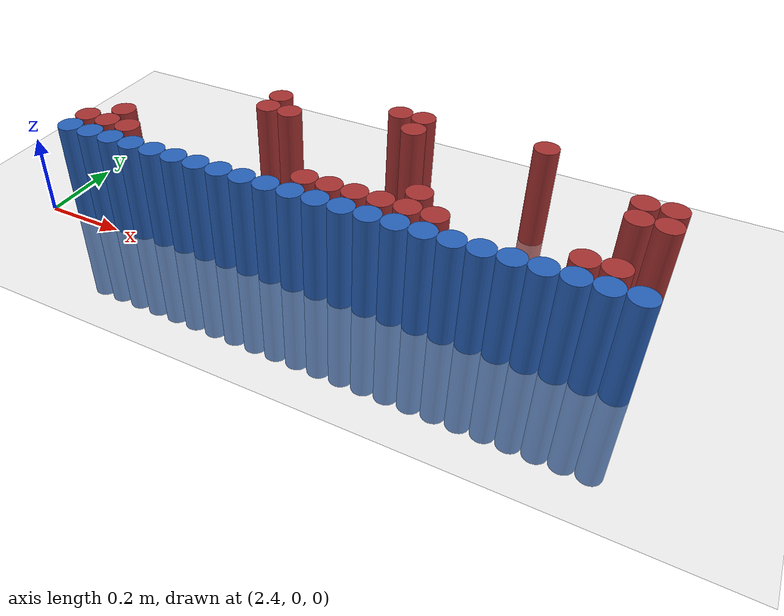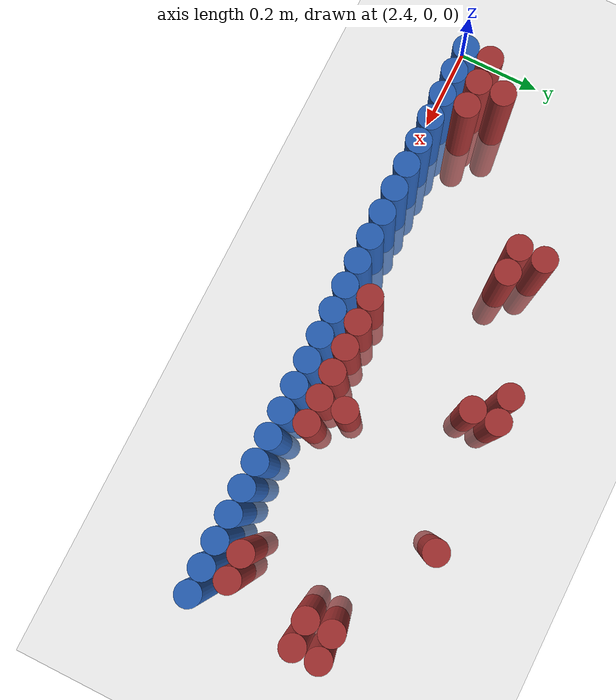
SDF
<sdf version="1.6">
 <world name="default">
  <model name="ground_plane">
   <static>1</static>
   <link name="link">
    <collision name="collision">
     <geometry><plane><normal>0 0 1</normal><size>100 100</size></plane></geometry>
     <surface><friction><ode><mu>100</mu><mu2>50</mu2></ode></friction></surface>
    </collision>
    <visual name="visual">
     <cast_shadows>0</cast_shadows>
     <geometry><plane><normal>0 0 1</normal><size>100 100</size></plane></geometry>
     <material>
      <script><uri>file://media/materials/scripts/gazebo.material</uri><name>Gazebo/Grey</name></script>
     </material>
    </visual>
   </link>
  </model>
  <model name="unit_cylinder_215">
   <static>1</static>
   <pose>3.150000 0.450000 0.000000 0.000000 0.000000 0.000000</pose>
   <link name="link">
    <inertial>
     <mass>1</mass>
     <inertia><ixx>0.145833</ixx><ixy>0</ixy><ixz>0</ixz><iyy>0.145833</iyy><iyz>0</iyz><izz>0.125</izz></inertia>
    </inertial>
    <collision name="collision">
     <geometry><cylinder><radius>0.030000</radius><length>0.5</length></cylinder></geometry>
    </collision>
    <visual name="visual">
     <geometry><cylinder><radius>0.030000</radius><length>0.5</length></cylinder></geometry>
     <material>
      <ambient>0.648000 0.192000 0.192000 1</ambient>
      <diffuse>0.648000 0.192000 0.192000 1</diffuse>
     </material>
     <material>
      <script><name>Gazebo/Grey</name><uri>file://media/materials/scripts/gazebo.material</uri></script>
     </material>
    </visual>
   </link>
  </model>
  <model name="unit_cylinder_216">
   <static>1</static>
   <pose>3.210000 0.450000 0.000000 0.000000 0.000000 0.000000</pose>
   <link name="link">
    <inertial>
     <mass>1</mass>
     <inertia><ixx>0.145833</ixx><ixy>0</ixy><ixz>0</ixz><iyy>0.145833</iyy><iyz>0</iyz><izz>0.125</izz></inertia>
    </inertial>
    <collision name="collision">
     <geometry><cylinder><radius>0.030000</radius><length>0.5</length></cylinder></geometry>
    </collision>
    <visual name="visual">
     <geometry><cylinder><radius>0.030000</radius><length>0.5</length></cylinder></geometry>
     <material>
      <ambient>0.648000 0.192000 0.192000 1</ambient>
      <diffuse>0.648000 0.192000 0.192000 1</diffuse>
     </material>
     <material>
      <script><name>Gazebo/Grey</name><uri>file://media/materials/scripts/gazebo.material</uri></script>
     </material>
    </visual>
   </link>
  </model>
  <model name="unit_cylinder_217">
   <static>1</static>
   <pose>3.510000 0.450000 0.000000 0.000000 0.000000 0.000000</pose>
   <link name="link">
    <inertial>
     <mass>1</mass>
     <inertia><ixx>0.145833</ixx><ixy>0</ixy><ixz>0</ixz><iyy>0.145833</iyy><iyz>0</iyz><izz>0.125</izz></inertia>
    </inertial>
    <collision name="collision">
     <geometry><cylinder><radius>0.030000</radius><length>0.5</length></cylinder></geometry>
    </collision>
    <visual name="visual">
     <geometry><cylinder><radius>0.030000</radius><length>0.5</length></cylinder></geometry>
     <material>
      <ambient>0.648000 0.192000 0.192000 1</ambient>
      <diffuse>0.648000 0.192000 0.192000 1</diffuse>
     </material>
     <material>
      <script><name>Gazebo/Grey</name><uri>file://media/materials/scripts/gazebo.material</uri></script>
     </material>
    </visual>
   </link>
  </model>
  <model name="unit_cylinder_220">
   <static>1</static>
   <pose>2.850000 0.390000 0.000000 0.000000 0.000000 0.000000</pose>
   <link name="link">
    <inertial>
     <mass>1</mass>
     <inertia><ixx>0.145833</ixx><ixy>0</ixy><ixz>0</ixz><iyy>0.145833</iyy><iyz>0</iyz><izz>0.125</izz></inertia>
    </inertial>
    <collision name="collision">
     <geometry><cylinder><radius>0.030000</radius><length>0.5</length></cylinder></geometry>
    </collision>
    <visual name="visual">
     <geometry><cylinder><radius>0.030000</radius><length>0.5</length></cylinder></geometry>
     <material>
      <ambient>0.648000 0.192000 0.192000 1</ambient>
      <diffuse>0.648000 0.192000 0.192000 1</diffuse>
     </material>
     <material>
      <script><name>Gazebo/Grey</name><uri>file://media/materials/scripts/gazebo.material</uri></script>
     </material>
    </visual>
   </link>
  </model>
  <model name="unit_cylinder_221">
   <static>1</static>
   <pose>3.210000 0.390000 0.000000 0.000000 0.000000 0.000000</pose>
   <link name="link">
    <inertial>
     <mass>1</mass>
     <inertia><ixx>0.145833</ixx><ixy>0</ixy><ixz>0</ixz><iyy>0.145833</iyy><iyz>0</iyz><izz>0.125</izz></inertia>
    </inertial>
    <collision name="collision">
     <geometry><cylinder><radius>0.030000</radius><length>0.5</length></cylinder></geometry>
    </collision>
    <visual name="visual">
     <geometry><cylinder><radius>0.030000</radius><length>0.5</length></cylinder></geometry>
     <material>
      <ambient>0.648000 0.192000 0.192000 1</ambient>
      <diffuse>0.648000 0.192000 0.192000 1</diffuse>
     </material>
     <material>
      <script><name>Gazebo/Grey</name><uri>file://media/materials/scripts/gazebo.material</uri></script>
     </material>
    </visual>
   </link>
  </model>
  <model name="unit_cylinder_225">
   <static>1</static>
   <pose>2.850000 0.330000 0.000000 0.000000 0.000000 0.000000</pose>
   <link name="link">
    <inertial>
     <mass>1</mass>
     <inertia><ixx>0.145833</ixx><ixy>0</ixy><ixz>0</ixz><iyy>0.145833</iyy><iyz>0</iyz><izz>0.125</izz></inertia>
    </inertial>
    <collision name="collision">
     <geometry><cylinder><radius>0.030000</radius><length>0.5</length></cylinder></geometry>
    </collision>
    <visual name="visual">
     <geometry><cylinder><radius>0.030000</radius><length>0.5</length></cylinder></geometry>
     <material>
      <ambient>0.648000 0.192000 0.192000 1</ambient>
      <diffuse>0.648000 0.192000 0.192000 1</diffuse>
     </material>
     <material>
      <script><name>Gazebo/Grey</name><uri>file://media/materials/scripts/gazebo.material</uri></script>
     </material>
    </visual>
   </link>
  </model>
  <model name="unit_cylinder_226">
   <static>1</static>
   <pose>2.910000 0.330000 0.000000 0.000000 0.000000 0.000000</pose>
   <link name="link">
    <inertial>
     <mass>1</mass>
     <inertia><ixx>0.145833</ixx><ixy>0</ixy><ixz>0</ixz><iyy>0.145833</iyy><iyz>0</iyz><izz>0.125</izz></inertia>
    </inertial>
    <collision name="collision">
     <geometry><cylinder><radius>0.030000</radius><length>0.5</length></cylinder></geometry>
    </collision>
    <visual name="visual">
     <geometry><cylinder><radius>0.030000</radius><length>0.5</length></cylinder></geometry>
     <material>
      <ambient>0.648000 0.192000 0.192000 1</ambient>
      <diffuse>0.648000 0.192000 0.192000 1</diffuse>
     </material>
     <material>
      <script><name>Gazebo/Grey</name><uri>file://media/materials/scripts/gazebo.material</uri></script>
     </material>
    </visual>
   </link>
  </model>
  <model name="unit_cylinder_227">
   <static>1</static>
   <pose>3.750000 0.330000 0.000000 0.000000 0.000000 0.000000</pose>
   <link name="link">
    <inertial>
     <mass>1</mass>
     <inertia><ixx>0.145833</ixx><ixy>0</ixy><ixz>0</ixz><iyy>0.145833</iyy><iyz>0</iyz><izz>0.125</izz></inertia>
    </inertial>
    <collision name="collision">
     <geometry><cylinder><radius>0.030000</radius><length>0.5</length></cylinder></geometry>
    </collision>
    <visual name="visual">
     <geometry><cylinder><radius>0.030000</radius><length>0.5</length></cylinder></geometry>
     <material>
      <ambient>0.648000 0.192000 0.192000 1</ambient>
      <diffuse>0.648000 0.192000 0.192000 1</diffuse>
     </material>
     <material>
      <script><name>Gazebo/Grey</name><uri>file://media/materials/scripts/gazebo.material</uri></script>
     </material>
    </visual>
   </link>
  </model>
  <model name="unit_cylinder_228">
   <static>1</static>
   <pose>3.810000 0.330000 0.000000 0.000000 0.000000 0.000000</pose>
   <link name="link">
    <inertial>
     <mass>1</mass>
     <inertia><ixx>0.145833</ixx><ixy>0</ixy><ixz>0</ixz><iyy>0.145833</iyy><iyz>0</iyz><izz>0.125</izz></inertia>
    </inertial>
    <collision name="collision">
     <geometry><cylinder><radius>0.030000</radius><length>0.5</length></cylinder></geometry>
    </collision>
    <visual name="visual">
     <geometry><cylinder><radius>0.030000</radius><length>0.5</length></cylinder></geometry>
     <material>
      <ambient>0.648000 0.192000 0.192000 1</ambient>
      <diffuse>0.648000 0.192000 0.192000 1</diffuse>
     </material>
     <material>
      <script><name>Gazebo/Grey</name><uri>file://media/materials/scripts/gazebo.material</uri></script>
     </material>
    </visual>
   </link>
  </model>
  <model name="unit_cylinder_230">
   <static>1</static>
   <pose>3.750000 0.270000 0.000000 0.000000 0.000000 0.000000</pose>
   <link name="link">
    <inertial>
     <mass>1</mass>
     <inertia><ixx>0.145833</ixx><ixy>0</ixy><ixz>0</ixz><iyy>0.145833</iyy><iyz>0</iyz><izz>0.125</izz></inertia>
    </inertial>
    <collision name="collision">
     <geometry><cylinder><radius>0.030000</radius><length>0.5</length></cylinder></geometry>
    </collision>
    <visual name="visual">
     <geometry><cylinder><radius>0.030000</radius><length>0.5</length></cylinder></geometry>
     <material>
      <ambient>0.648000 0.192000 0.192000 1</ambient>
      <diffuse>0.648000 0.192000 0.192000 1</diffuse>
     </material>
     <material>
      <script><name>Gazebo/Grey</name><uri>file://media/materials/scripts/gazebo.material</uri></script>
     </material>
    </visual>
   </link>
  </model>
  <model name="unit_cylinder_231">
   <static>1</static>
   <pose>3.810000 0.270000 0.000000 0.000000 0.000000 0.000000</pose>
   <link name="link">
    <inertial>
     <mass>1</mass>
     <inertia><ixx>0.145833</ixx><ixy>0</ixy><ixz>0</ixz><iyy>0.145833</iyy><iyz>0</iyz><izz>0.125</izz></inertia>
    </inertial>
    <collision name="collision">
     <geometry><cylinder><radius>0.030000</radius><length>0.5</length></cylinder></geometry>
    </collision>
    <visual name="visual">
     <geometry><cylinder><radius>0.030000</radius><length>0.5</length></cylinder></geometry>
     <material>
      <ambient>0.648000 0.192000 0.192000 1</ambient>
      <diffuse>0.648000 0.192000 0.192000 1</diffuse>
     </material>
     <material>
      <script><name>Gazebo/Grey</name><uri>file://media/materials/scripts/gazebo.material</uri></script>
     </material>
    </visual>
   </link>
  </model>
  <model name="unit_cylinder_235">
   <static>1</static>
   <pose>2.550000 0.150000 0.000000 0.000000 0.000000 0.000000</pose>
   <link name="link">
    <inertial>
     <mass>1</mass>
     <inertia><ixx>0.145833</ixx><ixy>0</ixy><ixz>0</ixz><iyy>0.145833</iyy><iyz>0</iyz><izz>0.125</izz></inertia>
    </inertial>
    <collision name="collision">
     <geometry><cylinder><radius>0.030000</radius><length>0.5</length></cylinder></geometry>
    </collision>
    <visual name="visual">
     <geometry><cylinder><radius>0.030000</radius><length>0.5</length></cylinder></geometry>
     <material>
      <ambient>0.648000 0.192000 0.192000 1</ambient>
      <diffuse>0.648000 0.192000 0.192000 1</diffuse>
     </material>
     <material>
      <script><name>Gazebo/Grey</name><uri>file://media/materials/scripts/gazebo.material</uri></script>
     </material>
    </visual>
   </link>
  </model>
  <model name="unit_cylinder_236">
   <static>1</static>
   <pose>3.330000 0.150000 0.000000 0.000000 0.000000 0.000000</pose>
   <link name="link">
    <inertial>
     <mass>1</mass>
     <inertia><ixx>0.145833</ixx><ixy>0</ixy><ixz>0</ixz><iyy>0.145833</iyy><iyz>0</iyz><izz>0.125</izz></inertia>
    </inertial>
    <collision name="collision">
     <geometry><cylinder><radius>0.030000</radius><length>0.5</length></cylinder></geometry>
    </collision>
    <visual name="visual">
     <geometry><cylinder><radius>0.030000</radius><length>0.5</length></cylinder></geometry>
     <material>
      <ambient>0.648000 0.192000 0.192000 1</ambient>
      <diffuse>0.648000 0.192000 0.192000 1</diffuse>
     </material>
     <material>
      <script><name>Gazebo/Grey</name><uri>file://media/materials/scripts/gazebo.material</uri></script>
     </material>
    </visual>
   </link>
  </model>
  <model name="unit_cylinder_241">
   <static>1</static>
   <pose>2.490000 0.090000 0.000000 0.000000 0.000000 0.000000</pose>
   <link name="link">
    <inertial>
     <mass>1</mass>
     <inertia><ixx>0.145833</ixx><ixy>0</ixy><ixz>0</ixz><iyy>0.145833</iyy><iyz>0</iyz><izz>0.125</izz></inertia>
    </inertial>
    <collision name="collision">
     <geometry><cylinder><radius>0.030000</radius><length>0.5</length></cylinder></geometry>
    </collision>
    <visual name="visual">
     <geometry><cylinder><radius>0.030000</radius><length>0.5</length></cylinder></geometry>
     <material>
      <ambient>0.648000 0.192000 0.192000 1</ambient>
      <diffuse>0.648000 0.192000 0.192000 1</diffuse>
     </material>
     <material>
      <script><name>Gazebo/Grey</name><uri>file://media/materials/scripts/gazebo.material</uri></script>
     </material>
    </visual>
   </link>
  </model>
  <model name="unit_cylinder_242">
   <static>1</static>
   <pose>2.550000 0.090000 0.000000 0.000000 0.000000 0.000000</pose>
   <link name="link">
    <inertial>
     <mass>1</mass>
     <inertia><ixx>0.145833</ixx><ixy>0</ixy><ixz>0</ixz><iyy>0.145833</iyy><iyz>0</iyz><izz>0.125</izz></inertia>
    </inertial>
    <collision name="collision">
     <geometry><cylinder><radius>0.030000</radius><length>0.5</length></cylinder></geometry>
    </collision>
    <visual name="visual">
     <geometry><cylinder><radius>0.030000</radius><length>0.5</length></cylinder></geometry>
     <material>
      <ambient>0.648000 0.192000 0.192000 1</ambient>
      <diffuse>0.648000 0.192000 0.192000 1</diffuse>
     </material>
     <material>
      <script><name>Gazebo/Grey</name><uri>file://media/materials/scripts/gazebo.material</uri></script>
     </material>
    </visual>
   </link>
  </model>
  <model name="unit_cylinder_243">
   <static>1</static>
   <pose>2.610000 0.090000 0.000000 0.000000 0.000000 0.000000</pose>
   <link name="link">
    <inertial>
     <mass>1</mass>
     <inertia><ixx>0.145833</ixx><ixy>0</ixy><ixz>0</ixz><iyy>0.145833</iyy><iyz>0</iyz><izz>0.125</izz></inertia>
    </inertial>
    <collision name="collision">
     <geometry><cylinder><radius>0.030000</radius><length>0.5</length></cylinder></geometry>
    </collision>
    <visual name="visual">
     <geometry><cylinder><radius>0.030000</radius><length>0.5</length></cylinder></geometry>
     <material>
      <ambient>0.648000 0.192000 0.192000 1</ambient>
      <diffuse>0.648000 0.192000 0.192000 1</diffuse>
     </material>
     <material>
      <script><name>Gazebo/Grey</name><uri>file://media/materials/scripts/gazebo.material</uri></script>
     </material>
    </visual>
   </link>
  </model>
  <model name="unit_cylinder_244">
   <static>1</static>
   <pose>3.090000 0.090000 0.000000 0.000000 0.000000 0.000000</pose>
   <link name="link">
    <inertial>
     <mass>1</mass>
     <inertia><ixx>0.145833</ixx><ixy>0</ixy><ixz>0</ixz><iyy>0.145833</iyy><iyz>0</iyz><izz>0.125</izz></inertia>
    </inertial>
    <collision name="collision">
     <geometry><cylinder><radius>0.030000</radius><length>0.5</length></cylinder></geometry>
    </collision>
    <visual name="visual">
     <geometry><cylinder><radius>0.030000</radius><length>0.5</length></cylinder></geometry>
     <material>
      <ambient>0.648000 0.192000 0.192000 1</ambient>
      <diffuse>0.648000 0.192000 0.192000 1</diffuse>
     </material>
     <material>
      <script><name>Gazebo/Grey</name><uri>file://media/materials/scripts/gazebo.material</uri></script>
     </material>
    </visual>
   </link>
  </model>
  <model name="unit_cylinder_245">
   <static>1</static>
   <pose>3.150000 0.090000 0.000000 0.000000 0.000000 0.000000</pose>
   <link name="link">
    <inertial>
     <mass>1</mass>
     <inertia><ixx>0.145833</ixx><ixy>0</ixy><ixz>0</ixz><iyy>0.145833</iyy><iyz>0</iyz><izz>0.125</izz></inertia>
    </inertial>
    <collision name="collision">
     <geometry><cylinder><radius>0.030000</radius><length>0.5</length></cylinder></geometry>
    </collision>
    <visual name="visual">
     <geometry><cylinder><radius>0.030000</radius><length>0.5</length></cylinder></geometry>
     <material>
      <ambient>0.648000 0.192000 0.192000 1</ambient>
      <diffuse>0.648000 0.192000 0.192000 1</diffuse>
     </material>
     <material>
      <script><name>Gazebo/Grey</name><uri>file://media/materials/scripts/gazebo.material</uri></script>
     </material>
    </visual>
   </link>
  </model>
  <model name="unit_cylinder_246">
   <static>1</static>
   <pose>3.210000 0.090000 0.000000 0.000000 0.000000 0.000000</pose>
   <link name="link">
    <inertial>
     <mass>1</mass>
     <inertia><ixx>0.145833</ixx><ixy>0</ixy><ixz>0</ixz><iyy>0.145833</iyy><iyz>0</iyz><izz>0.125</izz></inertia>
    </inertial>
    <collision name="collision">
     <geometry><cylinder><radius>0.030000</radius><length>0.5</length></cylinder></geometry>
    </collision>
    <visual name="visual">
     <geometry><cylinder><radius>0.030000</radius><length>0.5</length></cylinder></geometry>
     <material>
      <ambient>0.648000 0.192000 0.192000 1</ambient>
      <diffuse>0.648000 0.192000 0.192000 1</diffuse>
     </material>
     <material>
      <script><name>Gazebo/Grey</name><uri>file://media/materials/scripts/gazebo.material</uri></script>
     </material>
    </visual>
   </link>
  </model>
  <model name="unit_cylinder_247">
   <static>1</static>
   <pose>3.270000 0.090000 0.000000 0.000000 0.000000 0.000000</pose>
   <link name="link">
    <inertial>
     <mass>1</mass>
     <inertia><ixx>0.145833</ixx><ixy>0</ixy><ixz>0</ixz><iyy>0.145833</iyy><iyz>0</iyz><izz>0.125</izz></inertia>
    </inertial>
    <collision name="collision">
     <geometry><cylinder><radius>0.030000</radius><length>0.5</length></cylinder></geometry>
    </collision>
    <visual name="visual">
     <geometry><cylinder><radius>0.030000</radius><length>0.5</length></cylinder></geometry>
     <material>
      <ambient>0.648000 0.192000 0.192000 1</ambient>
      <diffuse>0.648000 0.192000 0.192000 1</diffuse>
     </material>
     <material>
      <script><name>Gazebo/Grey</name><uri>file://media/materials/scripts/gazebo.material</uri></script>
     </material>
    </visual>
   </link>
  </model>
  <model name="unit_cylinder_248">
   <static>1</static>
   <pose>3.330000 0.090000 0.000000 0.000000 0.000000 0.000000</pose>
   <link name="link">
    <inertial>
     <mass>1</mass>
     <inertia><ixx>0.145833</ixx><ixy>0</ixy><ixz>0</ixz><iyy>0.145833</iyy><iyz>0</iyz><izz>0.125</izz></inertia>
    </inertial>
    <collision name="collision">
     <geometry><cylinder><radius>0.030000</radius><length>0.5</length></cylinder></geometry>
    </collision>
    <visual name="visual">
     <geometry><cylinder><radius>0.030000</radius><length>0.5</length></cylinder></geometry>
     <material>
      <ambient>0.648000 0.192000 0.192000 1</ambient>
      <diffuse>0.648000 0.192000 0.192000 1</diffuse>
     </material>
     <material>
      <script><name>Gazebo/Grey</name><uri>file://media/materials/scripts/gazebo.material</uri></script>
     </material>
    </visual>
   </link>
  </model>
  <model name="unit_cylinder_249">
   <static>1</static>
   <pose>3.390000 0.090000 0.000000 0.000000 0.000000 0.000000</pose>
   <link name="link">
    <inertial>
     <mass>1</mass>
     <inertia><ixx>0.145833</ixx><ixy>0</ixy><ixz>0</ixz><iyy>0.145833</iyy><iyz>0</iyz><izz>0.125</izz></inertia>
    </inertial>
    <collision name="collision">
     <geometry><cylinder><radius>0.030000</radius><length>0.5</length></cylinder></geometry>
    </collision>
    <visual name="visual">
     <geometry><cylinder><radius>0.030000</radius><length>0.5</length></cylinder></geometry>
     <material>
      <ambient>0.648000 0.192000 0.192000 1</ambient>
      <diffuse>0.648000 0.192000 0.192000 1</diffuse>
     </material>
     <material>
      <script><name>Gazebo/Grey</name><uri>file://media/materials/scripts/gazebo.material</uri></script>
     </material>
    </visual>
   </link>
  </model>
  <model name="unit_cylinder_250">
   <static>1</static>
   <pose>3.690000 0.090000 0.000000 0.000000 0.000000 0.000000</pose>
   <link name="link">
    <inertial>
     <mass>1</mass>
     <inertia><ixx>0.145833</ixx><ixy>0</ixy><ixz>0</ixz><iyy>0.145833</iyy><iyz>0</iyz><izz>0.125</izz></inertia>
    </inertial>
    <collision name="collision">
     <geometry><cylinder><radius>0.030000</radius><length>0.5</length></cylinder></geometry>
    </collision>
    <visual name="visual">
     <geometry><cylinder><radius>0.030000</radius><length>0.5</length></cylinder></geometry>
     <material>
      <ambient>0.648000 0.192000 0.192000 1</ambient>
      <diffuse>0.648000 0.192000 0.192000 1</diffuse>
     </material>
     <material>
      <script><name>Gazebo/Grey</name><uri>file://media/materials/scripts/gazebo.material</uri></script>
     </material>
    </visual>
   </link>
  </model>
  <model name="unit_cylinder_251">
   <static>1</static>
   <pose>3.750000 0.090000 0.000000 0.000000 0.000000 0.000000</pose>
   <link name="link">
    <inertial>
     <mass>1</mass>
     <inertia><ixx>0.145833</ixx><ixy>0</ixy><ixz>0</ixz><iyy>0.145833</iyy><iyz>0</iyz><izz>0.125</izz></inertia>
    </inertial>
    <collision name="collision">
     <geometry><cylinder><radius>0.030000</radius><length>0.5</length></cylinder></geometry>
    </collision>
    <visual name="visual">
     <geometry><cylinder><radius>0.030000</radius><length>0.5</length></cylinder></geometry>
     <material>
      <ambient>0.648000 0.192000 0.192000 1</ambient>
      <diffuse>0.648000 0.192000 0.192000 1</diffuse>
     </material>
     <material>
      <script><name>Gazebo/Grey</name><uri>file://media/materials/scripts/gazebo.material</uri></script>
     </material>
    </visual>
   </link>
  </model>
  <model name="unit_cylinder_259">
   <static>1</static>
   <pose>2.490000 0.030000 0.000000 0.000000 0.000000 0.000000</pose>
   <link name="link">
    <inertial>
     <mass>1</mass>
     <inertia><ixx>0.145833</ixx><ixy>0</ixy><ixz>0</ixz><iyy>0.145833</iyy><iyz>0</iyz><izz>0.125</izz></inertia>
    </inertial>
    <collision name="collision">
     <geometry><cylinder><radius>0.030000</radius><length>0.5</length></cylinder></geometry>
    </collision>
    <visual name="visual">
     <geometry><cylinder><radius>0.030000</radius><length>0.5</length></cylinder></geometry>
     <material>
      <ambient>0.152000 0.379000 0.720000 1</ambient>
      <diffuse>0.152000 0.379000 0.720000 1</diffuse>
     </material>
     <material>
      <script><name>Gazebo/Grey</name><uri>file://media/materials/scripts/gazebo.material</uri></script>
     </material>
    </visual>
   </link>
  </model>
  <model name="unit_cylinder_260">
   <static>1</static>
   <pose>2.550000 0.030000 0.000000 0.000000 0.000000 0.000000</pose>
   <link name="link">
    <inertial>
     <mass>1</mass>
     <inertia><ixx>0.145833</ixx><ixy>0</ixy><ixz>0</ixz><iyy>0.145833</iyy><iyz>0</iyz><izz>0.125</izz></inertia>
    </inertial>
    <collision name="collision">
     <geometry><cylinder><radius>0.030000</radius><length>0.5</length></cylinder></geometry>
    </collision>
    <visual name="visual">
     <geometry><cylinder><radius>0.030000</radius><length>0.5</length></cylinder></geometry>
     <material>
      <ambient>0.152000 0.379000 0.720000 1</ambient>
      <diffuse>0.152000 0.379000 0.720000 1</diffuse>
     </material>
     <material>
      <script><name>Gazebo/Grey</name><uri>file://media/materials/scripts/gazebo.material</uri></script>
     </material>
    </visual>
   </link>
  </model>
  <model name="unit_cylinder_261">
   <static>1</static>
   <pose>2.610000 0.030000 0.000000 0.000000 0.000000 0.000000</pose>
   <link name="link">
    <inertial>
     <mass>1</mass>
     <inertia><ixx>0.145833</ixx><ixy>0</ixy><ixz>0</ixz><iyy>0.145833</iyy><iyz>0</iyz><izz>0.125</izz></inertia>
    </inertial>
    <collision name="collision">
     <geometry><cylinder><radius>0.030000</radius><length>0.5</length></cylinder></geometry>
    </collision>
    <visual name="visual">
     <geometry><cylinder><radius>0.030000</radius><length>0.5</length></cylinder></geometry>
     <material>
      <ambient>0.152000 0.379000 0.720000 1</ambient>
      <diffuse>0.152000 0.379000 0.720000 1</diffuse>
     </material>
     <material>
      <script><name>Gazebo/Grey</name><uri>file://media/materials/scripts/gazebo.material</uri></script>
     </material>
    </visual>
   </link>
  </model>
  <model name="unit_cylinder_262">
   <static>1</static>
   <pose>2.670000 0.030000 0.000000 0.000000 0.000000 0.000000</pose>
   <link name="link">
    <inertial>
     <mass>1</mass>
     <inertia><ixx>0.145833</ixx><ixy>0</ixy><ixz>0</ixz><iyy>0.145833</iyy><iyz>0</iyz><izz>0.125</izz></inertia>
    </inertial>
    <collision name="collision">
     <geometry><cylinder><radius>0.030000</radius><length>0.5</length></cylinder></geometry>
    </collision>
    <visual name="visual">
     <geometry><cylinder><radius>0.030000</radius><length>0.5</length></cylinder></geometry>
     <material>
      <ambient>0.152000 0.379000 0.720000 1</ambient>
      <diffuse>0.152000 0.379000 0.720000 1</diffuse>
     </material>
     <material>
      <script><name>Gazebo/Grey</name><uri>file://media/materials/scripts/gazebo.material</uri></script>
     </material>
    </visual>
   </link>
  </model>
  <model name="unit_cylinder_263">
   <static>1</static>
   <pose>2.730000 0.030000 0.000000 0.000000 0.000000 0.000000</pose>
   <link name="link">
    <inertial>
     <mass>1</mass>
     <inertia><ixx>0.145833</ixx><ixy>0</ixy><ixz>0</ixz><iyy>0.145833</iyy><iyz>0</iyz><izz>0.125</izz></inertia>
    </inertial>
    <collision name="collision">
     <geometry><cylinder><radius>0.030000</radius><length>0.5</length></cylinder></geometry>
    </collision>
    <visual name="visual">
     <geometry><cylinder><radius>0.030000</radius><length>0.5</length></cylinder></geometry>
     <material>
      <ambient>0.152000 0.379000 0.720000 1</ambient>
      <diffuse>0.152000 0.379000 0.720000 1</diffuse>
     </material>
     <material>
      <script><name>Gazebo/Grey</name><uri>file://media/materials/scripts/gazebo.material</uri></script>
     </material>
    </visual>
   </link>
  </model>
  <model name="unit_cylinder_264">
   <static>1</static>
   <pose>2.790000 0.030000 0.000000 0.000000 0.000000 0.000000</pose>
   <link name="link">
    <inertial>
     <mass>1</mass>
     <inertia><ixx>0.145833</ixx><ixy>0</ixy><ixz>0</ixz><iyy>0.145833</iyy><iyz>0</iyz><izz>0.125</izz></inertia>
    </inertial>
    <collision name="collision">
     <geometry><cylinder><radius>0.030000</radius><length>0.5</length></cylinder></geometry>
    </collision>
    <visual name="visual">
     <geometry><cylinder><radius>0.030000</radius><length>0.5</length></cylinder></geometry>
     <material>
      <ambient>0.152000 0.379000 0.720000 1</ambient>
      <diffuse>0.152000 0.379000 0.720000 1</diffuse>
     </material>
     <material>
      <script><name>Gazebo/Grey</name><uri>file://media/materials/scripts/gazebo.material</uri></script>
     </material>
    </visual>
   </link>
  </model>
  <model name="unit_cylinder_265">
   <static>1</static>
   <pose>2.850000 0.030000 0.000000 0.000000 0.000000 0.000000</pose>
   <link name="link">
    <inertial>
     <mass>1</mass>
     <inertia><ixx>0.145833</ixx><ixy>0</ixy><ixz>0</ixz><iyy>0.145833</iyy><iyz>0</iyz><izz>0.125</izz></inertia>
    </inertial>
    <collision name="collision">
     <geometry><cylinder><radius>0.030000</radius><length>0.5</length></cylinder></geometry>
    </collision>
    <visual name="visual">
     <geometry><cylinder><radius>0.030000</radius><length>0.5</length></cylinder></geometry>
     <material>
      <ambient>0.152000 0.379000 0.720000 1</ambient>
      <diffuse>0.152000 0.379000 0.720000 1</diffuse>
     </material>
     <material>
      <script><name>Gazebo/Grey</name><uri>file://media/materials/scripts/gazebo.material</uri></script>
     </material>
    </visual>
   </link>
  </model>
  <model name="unit_cylinder_266">
   <static>1</static>
   <pose>2.910000 0.030000 0.000000 0.000000 0.000000 0.000000</pose>
   <link name="link">
    <inertial>
     <mass>1</mass>
     <inertia><ixx>0.145833</ixx><ixy>0</ixy><ixz>0</ixz><iyy>0.145833</iyy><iyz>0</iyz><izz>0.125</izz></inertia>
    </inertial>
    <collision name="collision">
     <geometry><cylinder><radius>0.030000</radius><length>0.5</length></cylinder></geometry>
    </collision>
    <visual name="visual">
     <geometry><cylinder><radius>0.030000</radius><length>0.5</length></cylinder></geometry>
     <material>
      <ambient>0.152000 0.379000 0.720000 1</ambient>
      <diffuse>0.152000 0.379000 0.720000 1</diffuse>
     </material>
     <material>
      <script><name>Gazebo/Grey</name><uri>file://media/materials/scripts/gazebo.material</uri></script>
     </material>
    </visual>
   </link>
  </model>
  <model name="unit_cylinder_267">
   <static>1</static>
   <pose>2.970000 0.030000 0.000000 0.000000 0.000000 0.000000</pose>
   <link name="link">
    <inertial>
     <mass>1</mass>
     <inertia><ixx>0.145833</ixx><ixy>0</ixy><ixz>0</ixz><iyy>0.145833</iyy><iyz>0</iyz><izz>0.125</izz></inertia>
    </inertial>
    <collision name="collision">
     <geometry><cylinder><radius>0.030000</radius><length>0.5</length></cylinder></geometry>
    </collision>
    <visual name="visual">
     <geometry><cylinder><radius>0.030000</radius><length>0.5</length></cylinder></geometry>
     <material>
      <ambient>0.152000 0.379000 0.720000 1</ambient>
      <diffuse>0.152000 0.379000 0.720000 1</diffuse>
     </material>
     <material>
      <script><name>Gazebo/Grey</name><uri>file://media/materials/scripts/gazebo.material</uri></script>
     </material>
    </visual>
   </link>
  </model>
  <model name="unit_cylinder_268">
   <static>1</static>
   <pose>3.030000 0.030000 0.000000 0.000000 0.000000 0.000000</pose>
   <link name="link">
    <inertial>
     <mass>1</mass>
     <inertia><ixx>0.145833</ixx><ixy>0</ixy><ixz>0</ixz><iyy>0.145833</iyy><iyz>0</iyz><izz>0.125</izz></inertia>
    </inertial>
    <collision name="collision">
     <geometry><cylinder><radius>0.030000</radius><length>0.5</length></cylinder></geometry>
    </collision>
    <visual name="visual">
     <geometry><cylinder><radius>0.030000</radius><length>0.5</length></cylinder></geometry>
     <material>
      <ambient>0.152000 0.379000 0.720000 1</ambient>
      <diffuse>0.152000 0.379000 0.720000 1</diffuse>
     </material>
     <material>
      <script><name>Gazebo/Grey</name><uri>file://media/materials/scripts/gazebo.material</uri></script>
     </material>
    </visual>
   </link>
  </model>
  <model name="unit_cylinder_269">
   <static>1</static>
   <pose>3.090000 0.030000 0.000000 0.000000 0.000000 0.000000</pose>
   <link name="link">
    <inertial>
     <mass>1</mass>
     <inertia><ixx>0.145833</ixx><ixy>0</ixy><ixz>0</ixz><iyy>0.145833</iyy><iyz>0</iyz><izz>0.125</izz></inertia>
    </inertial>
    <collision name="collision">
     <geometry><cylinder><radius>0.030000</radius><length>0.5</length></cylinder></geometry>
    </collision>
    <visual name="visual">
     <geometry><cylinder><radius>0.030000</radius><length>0.5</length></cylinder></geometry>
     <material>
      <ambient>0.152000 0.379000 0.720000 1</ambient>
      <diffuse>0.152000 0.379000 0.720000 1</diffuse>
     </material>
     <material>
      <script><name>Gazebo/Grey</name><uri>file://media/materials/scripts/gazebo.material</uri></script>
     </material>
    </visual>
   </link>
  </model>
  <model name="unit_cylinder_270">
   <static>1</static>
   <pose>3.150000 0.030000 0.000000 0.000000 0.000000 0.000000</pose>
   <link name="link">
    <inertial>
     <mass>1</mass>
     <inertia><ixx>0.145833</ixx><ixy>0</ixy><ixz>0</ixz><iyy>0.145833</iyy><iyz>0</iyz><izz>0.125</izz></inertia>
    </inertial>
    <collision name="collision">
     <geometry><cylinder><radius>0.030000</radius><length>0.5</length></cylinder></geometry>
    </collision>
    <visual name="visual">
     <geometry><cylinder><radius>0.030000</radius><length>0.5</length></cylinder></geometry>
     <material>
      <ambient>0.152000 0.379000 0.720000 1</ambient>
      <diffuse>0.152000 0.379000 0.720000 1</diffuse>
     </material>
     <material>
      <script><name>Gazebo/Grey</name><uri>file://media/materials/scripts/gazebo.material</uri></script>
     </material>
    </visual>
   </link>
  </model>
  <model name="unit_cylinder_271">
   <static>1</static>
   <pose>3.210000 0.030000 0.000000 0.000000 0.000000 0.000000</pose>
   <link name="link">
    <inertial>
     <mass>1</mass>
     <inertia><ixx>0.145833</ixx><ixy>0</ixy><ixz>0</ixz><iyy>0.145833</iyy><iyz>0</iyz><izz>0.125</izz></inertia>
    </inertial>
    <collision name="collision">
     <geometry><cylinder><radius>0.030000</radius><length>0.5</length></cylinder></geometry>
    </collision>
    <visual name="visual">
     <geometry><cylinder><radius>0.030000</radius><length>0.5</length></cylinder></geometry>
     <material>
      <ambient>0.152000 0.379000 0.720000 1</ambient>
      <diffuse>0.152000 0.379000 0.720000 1</diffuse>
     </material>
     <material>
      <script><name>Gazebo/Grey</name><uri>file://media/materials/scripts/gazebo.material</uri></script>
     </material>
    </visual>
   </link>
  </model>
  <model name="unit_cylinder_272">
   <static>1</static>
   <pose>3.270000 0.030000 0.000000 0.000000 0.000000 0.000000</pose>
   <link name="link">
    <inertial>
     <mass>1</mass>
     <inertia><ixx>0.145833</ixx><ixy>0</ixy><ixz>0</ixz><iyy>0.145833</iyy><iyz>0</iyz><izz>0.125</izz></inertia>
    </inertial>
    <collision name="collision">
     <geometry><cylinder><radius>0.030000</radius><length>0.5</length></cylinder></geometry>
    </collision>
    <visual name="visual">
     <geometry><cylinder><radius>0.030000</radius><length>0.5</length></cylinder></geometry>
     <material>
      <ambient>0.152000 0.379000 0.720000 1</ambient>
      <diffuse>0.152000 0.379000 0.720000 1</diffuse>
     </material>
     <material>
      <script><name>Gazebo/Grey</name><uri>file://media/materials/scripts/gazebo.material</uri></script>
     </material>
    </visual>
   </link>
  </model>
  <model name="unit_cylinder_273">
   <static>1</static>
   <pose>3.330000 0.030000 0.000000 0.000000 0.000000 0.000000</pose>
   <link name="link">
    <inertial>
     <mass>1</mass>
     <inertia><ixx>0.145833</ixx><ixy>0</ixy><ixz>0</ixz><iyy>0.145833</iyy><iyz>0</iyz><izz>0.125</izz></inertia>
    </inertial>
    <collision name="collision">
     <geometry><cylinder><radius>0.030000</radius><length>0.5</length></cylinder></geometry>
    </collision>
    <visual name="visual">
     <geometry><cylinder><radius>0.030000</radius><length>0.5</length></cylinder></geometry>
     <material>
      <ambient>0.152000 0.379000 0.720000 1</ambient>
      <diffuse>0.152000 0.379000 0.720000 1</diffuse>
     </material>
     <material>
      <script><name>Gazebo/Grey</name><uri>file://media/materials/scripts/gazebo.material</uri></script>
     </material>
    </visual>
   </link>
  </model>
  <model name="unit_cylinder_274">
   <static>1</static>
   <pose>3.390000 0.030000 0.000000 0.000000 0.000000 0.000000</pose>
   <link name="link">
    <inertial>
     <mass>1</mass>
     <inertia><ixx>0.145833</ixx><ixy>0</ixy><ixz>0</ixz><iyy>0.145833</iyy><iyz>0</iyz><izz>0.125</izz></inertia>
    </inertial>
    <collision name="collision">
     <geometry><cylinder><radius>0.030000</radius><length>0.5</length></cylinder></geometry>
    </collision>
    <visual name="visual">
     <geometry><cylinder><radius>0.030000</radius><length>0.5</length></cylinder></geometry>
     <material>
      <ambient>0.152000 0.379000 0.720000 1</ambient>
      <diffuse>0.152000 0.379000 0.720000 1</diffuse>
     </material>
     <material>
      <script><name>Gazebo/Grey</name><uri>file://media/materials/scripts/gazebo.material</uri></script>
     </material>
    </visual>
   </link>
  </model>
  <model name="unit_cylinder_275">
   <static>1</static>
   <pose>3.450000 0.030000 0.000000 0.000000 0.000000 0.000000</pose>
   <link name="link">
    <inertial>
     <mass>1</mass>
     <inertia><ixx>0.145833</ixx><ixy>0</ixy><ixz>0</ixz><iyy>0.145833</iyy><iyz>0</iyz><izz>0.125</izz></inertia>
    </inertial>
    <collision name="collision">
     <geometry><cylinder><radius>0.030000</radius><length>0.5</length></cylinder></geometry>
    </collision>
    <visual name="visual">
     <geometry><cylinder><radius>0.030000</radius><length>0.5</length></cylinder></geometry>
     <material>
      <ambient>0.152000 0.379000 0.720000 1</ambient>
      <diffuse>0.152000 0.379000 0.720000 1</diffuse>
     </material>
     <material>
      <script><name>Gazebo/Grey</name><uri>file://media/materials/scripts/gazebo.material</uri></script>
     </material>
    </visual>
   </link>
  </model>
  <model name="unit_cylinder_276">
   <static>1</static>
   <pose>3.510000 0.030000 0.000000 0.000000 0.000000 0.000000</pose>
   <link name="link">
    <inertial>
     <mass>1</mass>
     <inertia><ixx>0.145833</ixx><ixy>0</ixy><ixz>0</ixz><iyy>0.145833</iyy><iyz>0</iyz><izz>0.125</izz></inertia>
    </inertial>
    <collision name="collision">
     <geometry><cylinder><radius>0.030000</radius><length>0.5</length></cylinder></geometry>
    </collision>
    <visual name="visual">
     <geometry><cylinder><radius>0.030000</radius><length>0.5</length></cylinder></geometry>
     <material>
      <ambient>0.152000 0.379000 0.720000 1</ambient>
      <diffuse>0.152000 0.379000 0.720000 1</diffuse>
     </material>
     <material>
      <script><name>Gazebo/Grey</name><uri>file://media/materials/scripts/gazebo.material</uri></script>
     </material>
    </visual>
   </link>
  </model>
  <model name="unit_cylinder_277">
   <static>1</static>
   <pose>3.570000 0.030000 0.000000 0.000000 0.000000 0.000000</pose>
   <link name="link">
    <inertial>
     <mass>1</mass>
     <inertia><ixx>0.145833</ixx><ixy>0</ixy><ixz>0</ixz><iyy>0.145833</iyy><iyz>0</iyz><izz>0.125</izz></inertia>
    </inertial>
    <collision name="collision">
     <geometry><cylinder><radius>0.030000</radius><length>0.5</length></cylinder></geometry>
    </collision>
    <visual name="visual">
     <geometry><cylinder><radius>0.030000</radius><length>0.5</length></cylinder></geometry>
     <material>
      <ambient>0.152000 0.379000 0.720000 1</ambient>
      <diffuse>0.152000 0.379000 0.720000 1</diffuse>
     </material>
     <material>
      <script><name>Gazebo/Grey</name><uri>file://media/materials/scripts/gazebo.material</uri></script>
     </material>
    </visual>
   </link>
  </model>
  <model name="unit_cylinder_278">
   <static>1</static>
   <pose>3.630000 0.030000 0.000000 0.000000 0.000000 0.000000</pose>
   <link name="link">
    <inertial>
     <mass>1</mass>
     <inertia><ixx>0.145833</ixx><ixy>0</ixy><ixz>0</ixz><iyy>0.145833</iyy><iyz>0</iyz><izz>0.125</izz></inertia>
    </inertial>
    <collision name="collision">
     <geometry><cylinder><radius>0.030000</radius><length>0.5</length></cylinder></geometry>
    </collision>
    <visual name="visual">
     <geometry><cylinder><radius>0.030000</radius><length>0.5</length></cylinder></geometry>
     <material>
      <ambient>0.152000 0.379000 0.720000 1</ambient>
      <diffuse>0.152000 0.379000 0.720000 1</diffuse>
     </material>
     <material>
      <script><name>Gazebo/Grey</name><uri>file://media/materials/scripts/gazebo.material</uri></script>
     </material>
    </visual>
   </link>
  </model>
  <model name="unit_cylinder_279">
   <static>1</static>
   <pose>3.690000 0.030000 0.000000 0.000000 0.000000 0.000000</pose>
   <link name="link">
    <inertial>
     <mass>1</mass>
     <inertia><ixx>0.145833</ixx><ixy>0</ixy><ixz>0</ixz><iyy>0.145833</iyy><iyz>0</iyz><izz>0.125</izz></inertia>
    </inertial>
    <collision name="collision">
     <geometry><cylinder><radius>0.030000</radius><length>0.5</length></cylinder></geometry>
    </collision>
    <visual name="visual">
     <geometry><cylinder><radius>0.030000</radius><length>0.5</length></cylinder></geometry>
     <material>
      <ambient>0.152000 0.379000 0.720000 1</ambient>
      <diffuse>0.152000 0.379000 0.720000 1</diffuse>
     </material>
     <material>
      <script><name>Gazebo/Grey</name><uri>file://media/materials/scripts/gazebo.material</uri></script>
     </material>
    </visual>
   </link>
  </model>
  <model name="unit_cylinder_280">
   <static>1</static>
   <pose>3.750000 0.030000 0.000000 0.000000 0.000000 0.000000</pose>
   <link name="link">
    <inertial>
     <mass>1</mass>
     <inertia><ixx>0.145833</ixx><ixy>0</ixy><ixz>0</ixz><iyy>0.145833</iyy><iyz>0</iyz><izz>0.125</izz></inertia>
    </inertial>
    <collision name="collision">
     <geometry><cylinder><radius>0.030000</radius><length>0.5</length></cylinder></geometry>
    </collision>
    <visual name="visual">
     <geometry><cylinder><radius>0.030000</radius><length>0.5</length></cylinder></geometry>
     <material>
      <ambient>0.152000 0.379000 0.720000 1</ambient>
      <diffuse>0.152000 0.379000 0.720000 1</diffuse>
     </material>
     <material>
      <script><name>Gazebo/Grey</name><uri>file://media/materials/scripts/gazebo.material</uri></script>
     </material>
    </visual>
   </link>
  </model>
  <model name="unit_cylinder_281">
   <static>1</static>
   <pose>3.810000 0.030000 0.000000 0.000000 0.000000 0.000000</pose>
   <link name="link">
    <inertial>
     <mass>1</mass>
     <inertia><ixx>0.145833</ixx><ixy>0</ixy><ixz>0</ixz><iyy>0.145833</iyy><iyz>0</iyz><izz>0.125</izz></inertia>
    </inertial>
    <collision name="collision">
     <geometry><cylinder><radius>0.030000</radius><length>0.5</length></cylinder></geometry>
    </collision>
    <visual name="visual">
     <geometry><cylinder><radius>0.030000</radius><length>0.5</length></cylinder></geometry>
     <material>
      <ambient>0.152000 0.379000 0.720000 1</ambient>
      <diffuse>0.152000 0.379000 0.720000 1</diffuse>
     </material>
     <material>
      <script><name>Gazebo/Grey</name><uri>file://media/materials/scripts/gazebo.material</uri></script>
     </material>
    </visual>
   </link>
  </model>
 </world>
</sdf>
